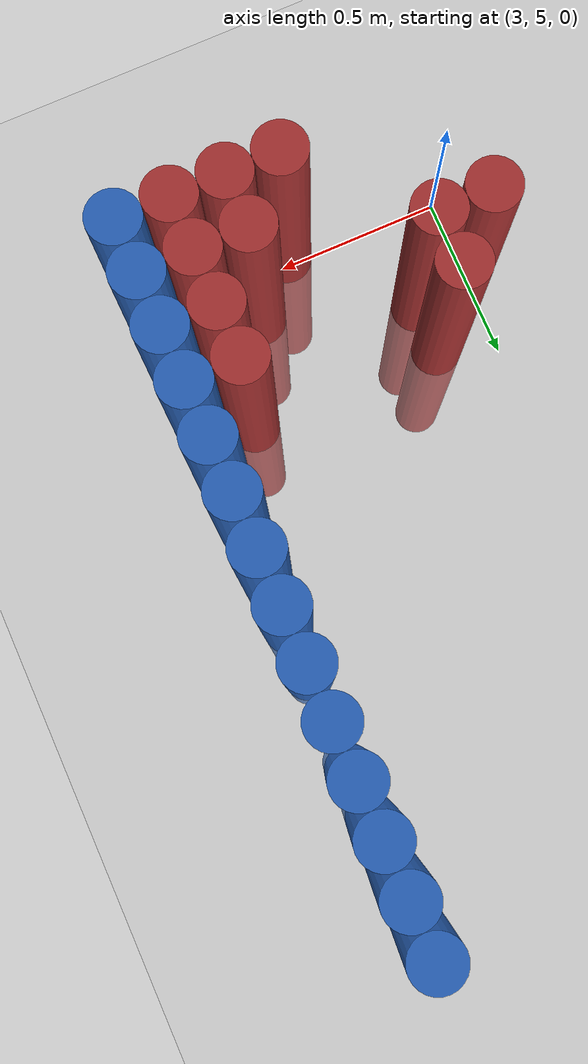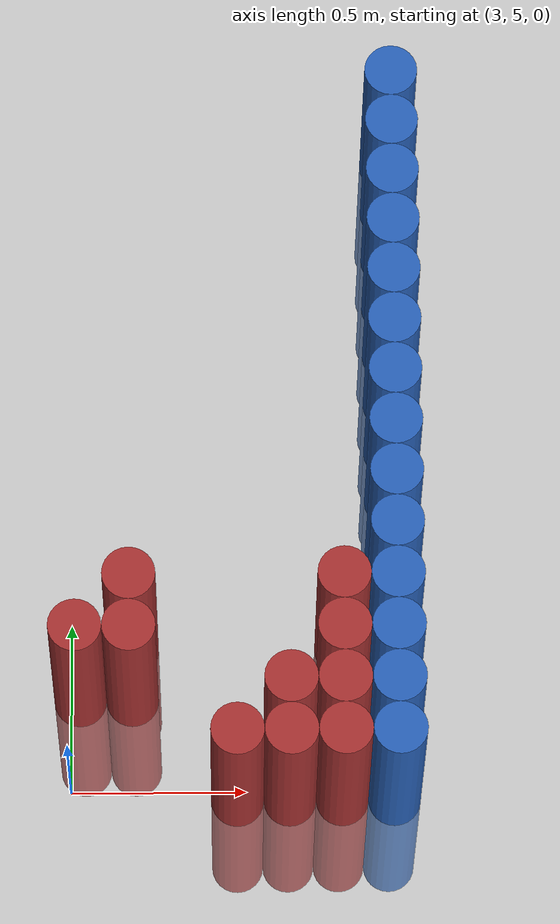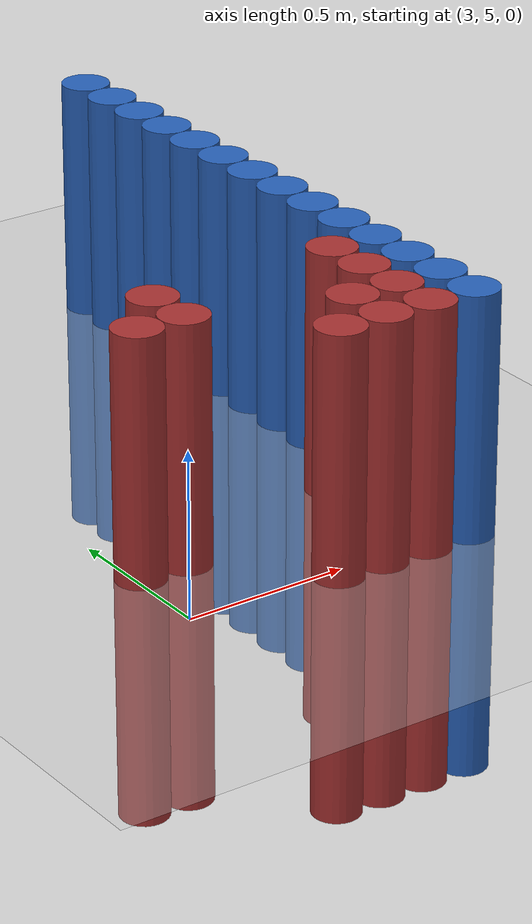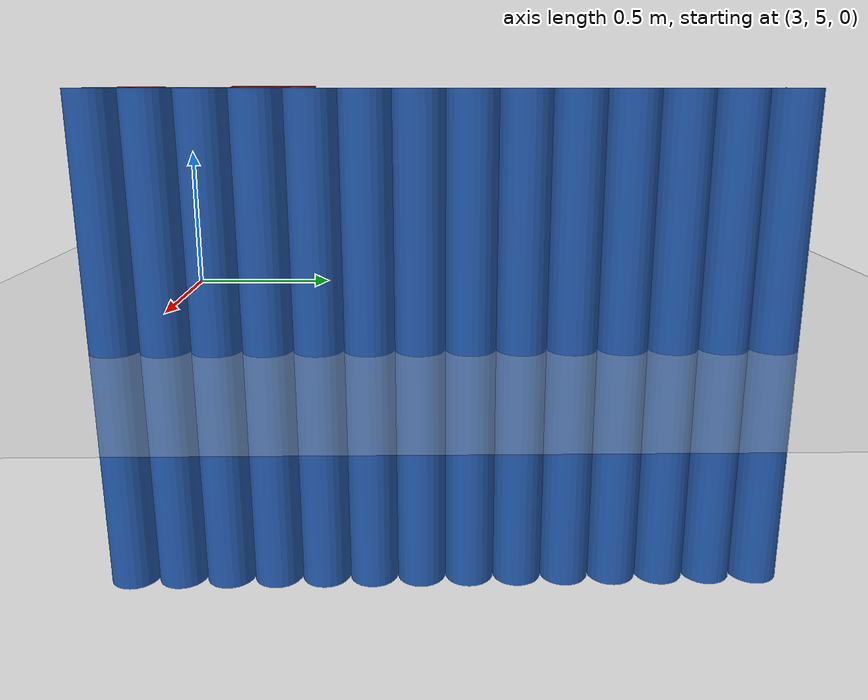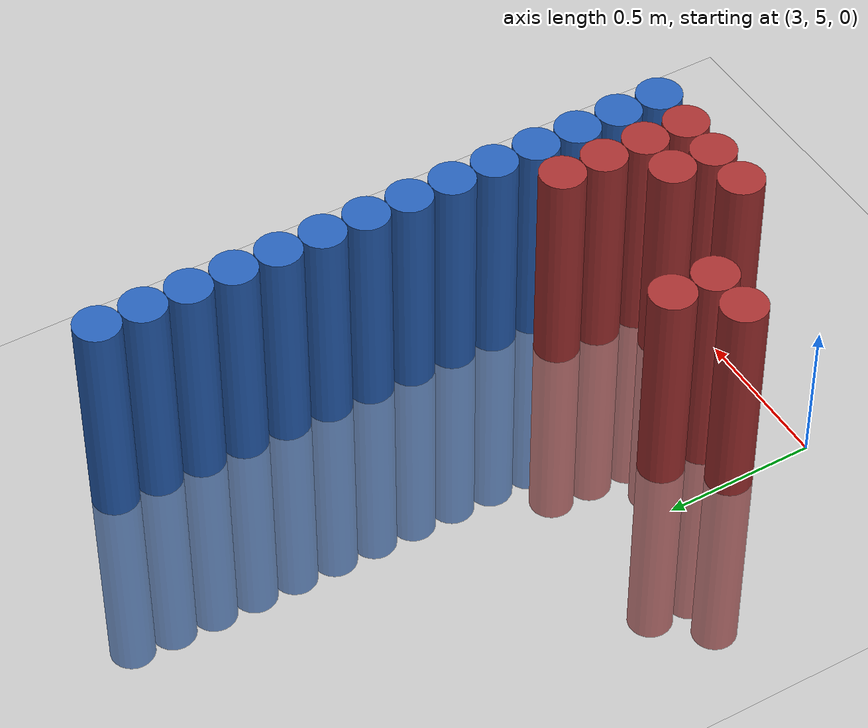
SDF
<sdf version="1.6">
 <world name="default">
  <model name="ground_plane">
   <static>1</static>
   <link name="link">
    <collision name="collision">
     <geometry><plane><normal>0 0 1</normal><size>100 100</size></plane></geometry>
     <surface><friction><ode><mu>100</mu><mu2>50</mu2></ode></friction></surface>
    </collision>
    <visual name="visual">
     <cast_shadows>0</cast_shadows>
     <geometry><plane><normal>0 0 1</normal><size>100 100</size></plane></geometry>
     <material>
      <script><uri>file://media/materials/scripts/gazebo.material</uri><name>Gazebo/Grey</name></script>
     </material>
    </visual>
   </link>
  </model>
  <model name="unit_cylinder_180">
   <static>1</static>
   <pose>3.925000 4.975000 0.000000 0.000000 0.000000 0.000000</pose>
   <link name="link">
    <inertial>
     <mass>1</mass>
     <inertia><ixx>0.145833</ixx><ixy>0</ixy><ixz>0</ixz><iyy>0.145833</iyy><iyz>0</iyz><izz>0.125</izz></inertia>
    </inertial>
    <collision name="collision">
     <geometry><cylinder><radius>0.075000</radius><length>1.5</length></cylinder></geometry>
    </collision>
    <visual name="visual">
     <geometry><cylinder><radius>0.075000</radius><length>1.5</length></cylinder></geometry>
     <material>
      <ambient>0.152000 0.379000 0.720000 1</ambient>
      <diffuse>0.152000 0.379000 0.720000 1</diffuse>
     </material>
     <material>
      <script><name>Gazebo/Grey</name><uri>file://media/materials/scripts/gazebo.material</uri></script>
     </material>
    </visual>
   </link>
  </model>
  <model name="unit_cylinder_182">
   <static>1</static>
   <pose>3.925000 5.125000 0.000000 0.000000 0.000000 0.000000</pose>
   <link name="link">
    <inertial>
     <mass>1</mass>
     <inertia><ixx>0.145833</ixx><ixy>0</ixy><ixz>0</ixz><iyy>0.145833</iyy><iyz>0</iyz><izz>0.125</izz></inertia>
    </inertial>
    <collision name="collision">
     <geometry><cylinder><radius>0.075000</radius><length>1.5</length></cylinder></geometry>
    </collision>
    <visual name="visual">
     <geometry><cylinder><radius>0.075000</radius><length>1.5</length></cylinder></geometry>
     <material>
      <ambient>0.152000 0.379000 0.720000 1</ambient>
      <diffuse>0.152000 0.379000 0.720000 1</diffuse>
     </material>
     <material>
      <script><name>Gazebo/Grey</name><uri>file://media/materials/scripts/gazebo.material</uri></script>
     </material>
    </visual>
   </link>
  </model>
  <model name="unit_cylinder_184">
   <static>1</static>
   <pose>3.925000 5.275000 0.000000 0.000000 0.000000 0.000000</pose>
   <link name="link">
    <inertial>
     <mass>1</mass>
     <inertia><ixx>0.145833</ixx><ixy>0</ixy><ixz>0</ixz><iyy>0.145833</iyy><iyz>0</iyz><izz>0.125</izz></inertia>
    </inertial>
    <collision name="collision">
     <geometry><cylinder><radius>0.075000</radius><length>1.5</length></cylinder></geometry>
    </collision>
    <visual name="visual">
     <geometry><cylinder><radius>0.075000</radius><length>1.5</length></cylinder></geometry>
     <material>
      <ambient>0.152000 0.379000 0.720000 1</ambient>
      <diffuse>0.152000 0.379000 0.720000 1</diffuse>
     </material>
     <material>
      <script><name>Gazebo/Grey</name><uri>file://media/materials/scripts/gazebo.material</uri></script>
     </material>
    </visual>
   </link>
  </model>
  <model name="unit_cylinder_186">
   <static>1</static>
   <pose>3.925000 5.425000 0.000000 0.000000 0.000000 0.000000</pose>
   <link name="link">
    <inertial>
     <mass>1</mass>
     <inertia><ixx>0.145833</ixx><ixy>0</ixy><ixz>0</ixz><iyy>0.145833</iyy><iyz>0</iyz><izz>0.125</izz></inertia>
    </inertial>
    <collision name="collision">
     <geometry><cylinder><radius>0.075000</radius><length>1.5</length></cylinder></geometry>
    </collision>
    <visual name="visual">
     <geometry><cylinder><radius>0.075000</radius><length>1.5</length></cylinder></geometry>
     <material>
      <ambient>0.152000 0.379000 0.720000 1</ambient>
      <diffuse>0.152000 0.379000 0.720000 1</diffuse>
     </material>
     <material>
      <script><name>Gazebo/Grey</name><uri>file://media/materials/scripts/gazebo.material</uri></script>
     </material>
    </visual>
   </link>
  </model>
  <model name="unit_cylinder_188">
   <static>1</static>
   <pose>3.925000 5.575000 0.000000 0.000000 0.000000 0.000000</pose>
   <link name="link">
    <inertial>
     <mass>1</mass>
     <inertia><ixx>0.145833</ixx><ixy>0</ixy><ixz>0</ixz><iyy>0.145833</iyy><iyz>0</iyz><izz>0.125</izz></inertia>
    </inertial>
    <collision name="collision">
     <geometry><cylinder><radius>0.075000</radius><length>1.5</length></cylinder></geometry>
    </collision>
    <visual name="visual">
     <geometry><cylinder><radius>0.075000</radius><length>1.5</length></cylinder></geometry>
     <material>
      <ambient>0.152000 0.379000 0.720000 1</ambient>
      <diffuse>0.152000 0.379000 0.720000 1</diffuse>
     </material>
     <material>
      <script><name>Gazebo/Grey</name><uri>file://media/materials/scripts/gazebo.material</uri></script>
     </material>
    </visual>
   </link>
  </model>
  <model name="unit_cylinder_190">
   <static>1</static>
   <pose>3.925000 5.725000 0.000000 0.000000 0.000000 0.000000</pose>
   <link name="link">
    <inertial>
     <mass>1</mass>
     <inertia><ixx>0.145833</ixx><ixy>0</ixy><ixz>0</ixz><iyy>0.145833</iyy><iyz>0</iyz><izz>0.125</izz></inertia>
    </inertial>
    <collision name="collision">
     <geometry><cylinder><radius>0.075000</radius><length>1.5</length></cylinder></geometry>
    </collision>
    <visual name="visual">
     <geometry><cylinder><radius>0.075000</radius><length>1.5</length></cylinder></geometry>
     <material>
      <ambient>0.152000 0.379000 0.720000 1</ambient>
      <diffuse>0.152000 0.379000 0.720000 1</diffuse>
     </material>
     <material>
      <script><name>Gazebo/Grey</name><uri>file://media/materials/scripts/gazebo.material</uri></script>
     </material>
    </visual>
   </link>
  </model>
  <model name="unit_cylinder_192">
   <static>1</static>
   <pose>3.925000 5.875000 0.000000 0.000000 0.000000 0.000000</pose>
   <link name="link">
    <inertial>
     <mass>1</mass>
     <inertia><ixx>0.145833</ixx><ixy>0</ixy><ixz>0</ixz><iyy>0.145833</iyy><iyz>0</iyz><izz>0.125</izz></inertia>
    </inertial>
    <collision name="collision">
     <geometry><cylinder><radius>0.075000</radius><length>1.5</length></cylinder></geometry>
    </collision>
    <visual name="visual">
     <geometry><cylinder><radius>0.075000</radius><length>1.5</length></cylinder></geometry>
     <material>
      <ambient>0.152000 0.379000 0.720000 1</ambient>
      <diffuse>0.152000 0.379000 0.720000 1</diffuse>
     </material>
     <material>
      <script><name>Gazebo/Grey</name><uri>file://media/materials/scripts/gazebo.material</uri></script>
     </material>
    </visual>
   </link>
  </model>
  <model name="unit_cylinder_194">
   <static>1</static>
   <pose>3.925000 6.025000 0.000000 0.000000 0.000000 0.000000</pose>
   <link name="link">
    <inertial>
     <mass>1</mass>
     <inertia><ixx>0.145833</ixx><ixy>0</ixy><ixz>0</ixz><iyy>0.145833</iyy><iyz>0</iyz><izz>0.125</izz></inertia>
    </inertial>
    <collision name="collision">
     <geometry><cylinder><radius>0.075000</radius><length>1.5</length></cylinder></geometry>
    </collision>
    <visual name="visual">
     <geometry><cylinder><radius>0.075000</radius><length>1.5</length></cylinder></geometry>
     <material>
      <ambient>0.152000 0.379000 0.720000 1</ambient>
      <diffuse>0.152000 0.379000 0.720000 1</diffuse>
     </material>
     <material>
      <script><name>Gazebo/Grey</name><uri>file://media/materials/scripts/gazebo.material</uri></script>
     </material>
    </visual>
   </link>
  </model>
  <model name="unit_cylinder_196">
   <static>1</static>
   <pose>3.925000 6.175000 0.000000 0.000000 0.000000 0.000000</pose>
   <link name="link">
    <inertial>
     <mass>1</mass>
     <inertia><ixx>0.145833</ixx><ixy>0</ixy><ixz>0</ixz><iyy>0.145833</iyy><iyz>0</iyz><izz>0.125</izz></inertia>
    </inertial>
    <collision name="collision">
     <geometry><cylinder><radius>0.075000</radius><length>1.5</length></cylinder></geometry>
    </collision>
    <visual name="visual">
     <geometry><cylinder><radius>0.075000</radius><length>1.5</length></cylinder></geometry>
     <material>
      <ambient>0.152000 0.379000 0.720000 1</ambient>
      <diffuse>0.152000 0.379000 0.720000 1</diffuse>
     </material>
     <material>
      <script><name>Gazebo/Grey</name><uri>file://media/materials/scripts/gazebo.material</uri></script>
     </material>
    </visual>
   </link>
  </model>
  <model name="unit_cylinder_198">
   <static>1</static>
   <pose>3.925000 6.325000 0.000000 0.000000 0.000000 0.000000</pose>
   <link name="link">
    <inertial>
     <mass>1</mass>
     <inertia><ixx>0.145833</ixx><ixy>0</ixy><ixz>0</ixz><iyy>0.145833</iyy><iyz>0</iyz><izz>0.125</izz></inertia>
    </inertial>
    <collision name="collision">
     <geometry><cylinder><radius>0.075000</radius><length>1.5</length></cylinder></geometry>
    </collision>
    <visual name="visual">
     <geometry><cylinder><radius>0.075000</radius><length>1.5</length></cylinder></geometry>
     <material>
      <ambient>0.152000 0.379000 0.720000 1</ambient>
      <diffuse>0.152000 0.379000 0.720000 1</diffuse>
     </material>
     <material>
      <script><name>Gazebo/Grey</name><uri>file://media/materials/scripts/gazebo.material</uri></script>
     </material>
    </visual>
   </link>
  </model>
  <model name="unit_cylinder_200">
   <static>1</static>
   <pose>3.925000 6.475000 0.000000 0.000000 0.000000 0.000000</pose>
   <link name="link">
    <inertial>
     <mass>1</mass>
     <inertia><ixx>0.145833</ixx><ixy>0</ixy><ixz>0</ixz><iyy>0.145833</iyy><iyz>0</iyz><izz>0.125</izz></inertia>
    </inertial>
    <collision name="collision">
     <geometry><cylinder><radius>0.075000</radius><length>1.5</length></cylinder></geometry>
    </collision>
    <visual name="visual">
     <geometry><cylinder><radius>0.075000</radius><length>1.5</length></cylinder></geometry>
     <material>
      <ambient>0.152000 0.379000 0.720000 1</ambient>
      <diffuse>0.152000 0.379000 0.720000 1</diffuse>
     </material>
     <material>
      <script><name>Gazebo/Grey</name><uri>file://media/materials/scripts/gazebo.material</uri></script>
     </material>
    </visual>
   </link>
  </model>
  <model name="unit_cylinder_202">
   <static>1</static>
   <pose>3.925000 6.625000 0.000000 0.000000 0.000000 0.000000</pose>
   <link name="link">
    <inertial>
     <mass>1</mass>
     <inertia><ixx>0.145833</ixx><ixy>0</ixy><ixz>0</ixz><iyy>0.145833</iyy><iyz>0</iyz><izz>0.125</izz></inertia>
    </inertial>
    <collision name="collision">
     <geometry><cylinder><radius>0.075000</radius><length>1.5</length></cylinder></geometry>
    </collision>
    <visual name="visual">
     <geometry><cylinder><radius>0.075000</radius><length>1.5</length></cylinder></geometry>
     <material>
      <ambient>0.152000 0.379000 0.720000 1</ambient>
      <diffuse>0.152000 0.379000 0.720000 1</diffuse>
     </material>
     <material>
      <script><name>Gazebo/Grey</name><uri>file://media/materials/scripts/gazebo.material</uri></script>
     </material>
    </visual>
   </link>
  </model>
  <model name="unit_cylinder_204">
   <static>1</static>
   <pose>3.925000 6.775000 0.000000 0.000000 0.000000 0.000000</pose>
   <link name="link">
    <inertial>
     <mass>1</mass>
     <inertia><ixx>0.145833</ixx><ixy>0</ixy><ixz>0</ixz><iyy>0.145833</iyy><iyz>0</iyz><izz>0.125</izz></inertia>
    </inertial>
    <collision name="collision">
     <geometry><cylinder><radius>0.075000</radius><length>1.5</length></cylinder></geometry>
    </collision>
    <visual name="visual">
     <geometry><cylinder><radius>0.075000</radius><length>1.5</length></cylinder></geometry>
     <material>
      <ambient>0.152000 0.379000 0.720000 1</ambient>
      <diffuse>0.152000 0.379000 0.720000 1</diffuse>
     </material>
     <material>
      <script><name>Gazebo/Grey</name><uri>file://media/materials/scripts/gazebo.material</uri></script>
     </material>
    </visual>
   </link>
  </model>
  <model name="unit_cylinder_206">
   <static>1</static>
   <pose>3.925000 6.925000 0.000000 0.000000 0.000000 0.000000</pose>
   <link name="link">
    <inertial>
     <mass>1</mass>
     <inertia><ixx>0.145833</ixx><ixy>0</ixy><ixz>0</ixz><iyy>0.145833</iyy><iyz>0</iyz><izz>0.125</izz></inertia>
    </inertial>
    <collision name="collision">
     <geometry><cylinder><radius>0.075000</radius><length>1.5</length></cylinder></geometry>
    </collision>
    <visual name="visual">
     <geometry><cylinder><radius>0.075000</radius><length>1.5</length></cylinder></geometry>
     <material>
      <ambient>0.152000 0.379000 0.720000 1</ambient>
      <diffuse>0.152000 0.379000 0.720000 1</diffuse>
     </material>
     <material>
      <script><name>Gazebo/Grey</name><uri>file://media/materials/scripts/gazebo.material</uri></script>
     </material>
    </visual>
   </link>
  </model>
  <model name="unit_cylinder_447">
   <static>1</static>
   <pose>3.025000 5.275000 0.000000 0.000000 0.000000 0.000000</pose>
   <link name="link">
    <inertial>
     <mass>1</mass>
     <inertia><ixx>0.145833</ixx><ixy>0</ixy><ixz>0</ixz><iyy>0.145833</iyy><iyz>0</iyz><izz>0.125</izz></inertia>
    </inertial>
    <collision name="collision">
     <geometry><cylinder><radius>0.075000</radius><length>1.5</length></cylinder></geometry>
    </collision>
    <visual name="visual">
     <geometry><cylinder><radius>0.075000</radius><length>1.5</length></cylinder></geometry>
     <material>
      <ambient>0.648000 0.192000 0.192000 1</ambient>
      <diffuse>0.648000 0.192000 0.192000 1</diffuse>
     </material>
     <material>
      <script><name>Gazebo/Grey</name><uri>file://media/materials/scripts/gazebo.material</uri></script>
     </material>
    </visual>
   </link>
  </model>
  <model name="unit_cylinder_448">
   <static>1</static>
   <pose>3.175000 5.275000 0.000000 0.000000 0.000000 0.000000</pose>
   <link name="link">
    <inertial>
     <mass>1</mass>
     <inertia><ixx>0.145833</ixx><ixy>0</ixy><ixz>0</ixz><iyy>0.145833</iyy><iyz>0</iyz><izz>0.125</izz></inertia>
    </inertial>
    <collision name="collision">
     <geometry><cylinder><radius>0.075000</radius><length>1.5</length></cylinder></geometry>
    </collision>
    <visual name="visual">
     <geometry><cylinder><radius>0.075000</radius><length>1.5</length></cylinder></geometry>
     <material>
      <ambient>0.648000 0.192000 0.192000 1</ambient>
      <diffuse>0.648000 0.192000 0.192000 1</diffuse>
     </material>
     <material>
      <script><name>Gazebo/Grey</name><uri>file://media/materials/scripts/gazebo.material</uri></script>
     </material>
    </visual>
   </link>
  </model>
  <model name="unit_cylinder_449">
   <static>1</static>
   <pose>3.175000 5.425000 0.000000 0.000000 0.000000 0.000000</pose>
   <link name="link">
    <inertial>
     <mass>1</mass>
     <inertia><ixx>0.145833</ixx><ixy>0</ixy><ixz>0</ixz><iyy>0.145833</iyy><iyz>0</iyz><izz>0.125</izz></inertia>
    </inertial>
    <collision name="collision">
     <geometry><cylinder><radius>0.075000</radius><length>1.5</length></cylinder></geometry>
    </collision>
    <visual name="visual">
     <geometry><cylinder><radius>0.075000</radius><length>1.5</length></cylinder></geometry>
     <material>
      <ambient>0.648000 0.192000 0.192000 1</ambient>
      <diffuse>0.648000 0.192000 0.192000 1</diffuse>
     </material>
     <material>
      <script><name>Gazebo/Grey</name><uri>file://media/materials/scripts/gazebo.material</uri></script>
     </material>
    </visual>
   </link>
  </model>
  <model name="unit_cylinder_459">
   <static>1</static>
   <pose>3.475000 4.975000 0.000000 0.000000 0.000000 0.000000</pose>
   <link name="link">
    <inertial>
     <mass>1</mass>
     <inertia><ixx>0.145833</ixx><ixy>0</ixy><ixz>0</ixz><iyy>0.145833</iyy><iyz>0</iyz><izz>0.125</izz></inertia>
    </inertial>
    <collision name="collision">
     <geometry><cylinder><radius>0.075000</radius><length>1.5</length></cylinder></geometry>
    </collision>
    <visual name="visual">
     <geometry><cylinder><radius>0.075000</radius><length>1.5</length></cylinder></geometry>
     <material>
      <ambient>0.648000 0.192000 0.192000 1</ambient>
      <diffuse>0.648000 0.192000 0.192000 1</diffuse>
     </material>
     <material>
      <script><name>Gazebo/Grey</name><uri>file://media/materials/scripts/gazebo.material</uri></script>
     </material>
    </visual>
   </link>
  </model>
  <model name="unit_cylinder_465">
   <static>1</static>
   <pose>3.625000 4.975000 0.000000 0.000000 0.000000 0.000000</pose>
   <link name="link">
    <inertial>
     <mass>1</mass>
     <inertia><ixx>0.145833</ixx><ixy>0</ixy><ixz>0</ixz><iyy>0.145833</iyy><iyz>0</iyz><izz>0.125</izz></inertia>
    </inertial>
    <collision name="collision">
     <geometry><cylinder><radius>0.075000</radius><length>1.5</length></cylinder></geometry>
    </collision>
    <visual name="visual">
     <geometry><cylinder><radius>0.075000</radius><length>1.5</length></cylinder></geometry>
     <material>
      <ambient>0.648000 0.192000 0.192000 1</ambient>
      <diffuse>0.648000 0.192000 0.192000 1</diffuse>
     </material>
     <material>
      <script><name>Gazebo/Grey</name><uri>file://media/materials/scripts/gazebo.material</uri></script>
     </material>
    </visual>
   </link>
  </model>
  <model name="unit_cylinder_466">
   <static>1</static>
   <pose>3.625000 5.125000 0.000000 0.000000 0.000000 0.000000</pose>
   <link name="link">
    <inertial>
     <mass>1</mass>
     <inertia><ixx>0.145833</ixx><ixy>0</ixy><ixz>0</ixz><iyy>0.145833</iyy><iyz>0</iyz><izz>0.125</izz></inertia>
    </inertial>
    <collision name="collision">
     <geometry><cylinder><radius>0.075000</radius><length>1.5</length></cylinder></geometry>
    </collision>
    <visual name="visual">
     <geometry><cylinder><radius>0.075000</radius><length>1.5</length></cylinder></geometry>
     <material>
      <ambient>0.648000 0.192000 0.192000 1</ambient>
      <diffuse>0.648000 0.192000 0.192000 1</diffuse>
     </material>
     <material>
      <script><name>Gazebo/Grey</name><uri>file://media/materials/scripts/gazebo.material</uri></script>
     </material>
    </visual>
   </link>
  </model>
  <model name="unit_cylinder_489">
   <static>1</static>
   <pose>3.775000 4.975000 0.000000 0.000000 0.000000 0.000000</pose>
   <link name="link">
    <inertial>
     <mass>1</mass>
     <inertia><ixx>0.145833</ixx><ixy>0</ixy><ixz>0</ixz><iyy>0.145833</iyy><iyz>0</iyz><izz>0.125</izz></inertia>
    </inertial>
    <collision name="collision">
     <geometry><cylinder><radius>0.075000</radius><length>1.5</length></cylinder></geometry>
    </collision>
    <visual name="visual">
     <geometry><cylinder><radius>0.075000</radius><length>1.5</length></cylinder></geometry>
     <material>
      <ambient>0.648000 0.192000 0.192000 1</ambient>
      <diffuse>0.648000 0.192000 0.192000 1</diffuse>
     </material>
     <material>
      <script><name>Gazebo/Grey</name><uri>file://media/materials/scripts/gazebo.material</uri></script>
     </material>
    </visual>
   </link>
  </model>
  <model name="unit_cylinder_490">
   <static>1</static>
   <pose>3.775000 5.125000 0.000000 0.000000 0.000000 0.000000</pose>
   <link name="link">
    <inertial>
     <mass>1</mass>
     <inertia><ixx>0.145833</ixx><ixy>0</ixy><ixz>0</ixz><iyy>0.145833</iyy><iyz>0</iyz><izz>0.125</izz></inertia>
    </inertial>
    <collision name="collision">
     <geometry><cylinder><radius>0.075000</radius><length>1.5</length></cylinder></geometry>
    </collision>
    <visual name="visual">
     <geometry><cylinder><radius>0.075000</radius><length>1.5</length></cylinder></geometry>
     <material>
      <ambient>0.648000 0.192000 0.192000 1</ambient>
      <diffuse>0.648000 0.192000 0.192000 1</diffuse>
     </material>
     <material>
      <script><name>Gazebo/Grey</name><uri>file://media/materials/scripts/gazebo.material</uri></script>
     </material>
    </visual>
   </link>
  </model>
  <model name="unit_cylinder_491">
   <static>1</static>
   <pose>3.775000 5.275000 0.000000 0.000000 0.000000 0.000000</pose>
   <link name="link">
    <inertial>
     <mass>1</mass>
     <inertia><ixx>0.145833</ixx><ixy>0</ixy><ixz>0</ixz><iyy>0.145833</iyy><iyz>0</iyz><izz>0.125</izz></inertia>
    </inertial>
    <collision name="collision">
     <geometry><cylinder><radius>0.075000</radius><length>1.5</length></cylinder></geometry>
    </collision>
    <visual name="visual">
     <geometry><cylinder><radius>0.075000</radius><length>1.5</length></cylinder></geometry>
     <material>
      <ambient>0.648000 0.192000 0.192000 1</ambient>
      <diffuse>0.648000 0.192000 0.192000 1</diffuse>
     </material>
     <material>
      <script><name>Gazebo/Grey</name><uri>file://media/materials/scripts/gazebo.material</uri></script>
     </material>
    </visual>
   </link>
  </model>
  <model name="unit_cylinder_492">
   <static>1</static>
   <pose>3.775000 5.425000 0.000000 0.000000 0.000000 0.000000</pose>
   <link name="link">
    <inertial>
     <mass>1</mass>
     <inertia><ixx>0.145833</ixx><ixy>0</ixy><ixz>0</ixz><iyy>0.145833</iyy><iyz>0</iyz><izz>0.125</izz></inertia>
    </inertial>
    <collision name="collision">
     <geometry><cylinder><radius>0.075000</radius><length>1.5</length></cylinder></geometry>
    </collision>
    <visual name="visual">
     <geometry><cylinder><radius>0.075000</radius><length>1.5</length></cylinder></geometry>
     <material>
      <ambient>0.648000 0.192000 0.192000 1</ambient>
      <diffuse>0.648000 0.192000 0.192000 1</diffuse>
     </material>
     <material>
      <script><name>Gazebo/Grey</name><uri>file://media/materials/scripts/gazebo.material</uri></script>
     </material>
    </visual>
   </link>
  </model>
  <model name="unit_cylinder_539">
   <static>1</static>
   <pose>3.925000 4.975000 0.000000 0.000000 0.000000 0.000000</pose>
   <link name="link">
    <inertial>
     <mass>1</mass>
     <inertia><ixx>0.145833</ixx><ixy>0</ixy><ixz>0</ixz><iyy>0.145833</iyy><iyz>0</iyz><izz>0.125</izz></inertia>
    </inertial>
    <collision name="collision">
     <geometry><cylinder><radius>0.075000</radius><length>1.5</length></cylinder></geometry>
    </collision>
    <visual name="visual">
     <geometry><cylinder><radius>0.075000</radius><length>1.5</length></cylinder></geometry>
     <material>
      <ambient>0.152000 0.379000 0.720000 1</ambient>
      <diffuse>0.152000 0.379000 0.720000 1</diffuse>
     </material>
     <material>
      <script><name>Gazebo/Grey</name><uri>file://media/materials/scripts/gazebo.material</uri></script>
     </material>
    </visual>
   </link>
  </model>
  <model name="unit_cylinder_540">
   <static>1</static>
   <pose>3.925000 5.125000 0.000000 0.000000 0.000000 0.000000</pose>
   <link name="link">
    <inertial>
     <mass>1</mass>
     <inertia><ixx>0.145833</ixx><ixy>0</ixy><ixz>0</ixz><iyy>0.145833</iyy><iyz>0</iyz><izz>0.125</izz></inertia>
    </inertial>
    <collision name="collision">
     <geometry><cylinder><radius>0.075000</radius><length>1.5</length></cylinder></geometry>
    </collision>
    <visual name="visual">
     <geometry><cylinder><radius>0.075000</radius><length>1.5</length></cylinder></geometry>
     <material>
      <ambient>0.152000 0.379000 0.720000 1</ambient>
      <diffuse>0.152000 0.379000 0.720000 1</diffuse>
     </material>
     <material>
      <script><name>Gazebo/Grey</name><uri>file://media/materials/scripts/gazebo.material</uri></script>
     </material>
    </visual>
   </link>
  </model>
  <model name="unit_cylinder_541">
   <static>1</static>
   <pose>3.925000 5.275000 0.000000 0.000000 0.000000 0.000000</pose>
   <link name="link">
    <inertial>
     <mass>1</mass>
     <inertia><ixx>0.145833</ixx><ixy>0</ixy><ixz>0</ixz><iyy>0.145833</iyy><iyz>0</iyz><izz>0.125</izz></inertia>
    </inertial>
    <collision name="collision">
     <geometry><cylinder><radius>0.075000</radius><length>1.5</length></cylinder></geometry>
    </collision>
    <visual name="visual">
     <geometry><cylinder><radius>0.075000</radius><length>1.5</length></cylinder></geometry>
     <material>
      <ambient>0.152000 0.379000 0.720000 1</ambient>
      <diffuse>0.152000 0.379000 0.720000 1</diffuse>
     </material>
     <material>
      <script><name>Gazebo/Grey</name><uri>file://media/materials/scripts/gazebo.material</uri></script>
     </material>
    </visual>
   </link>
  </model>
  <model name="unit_cylinder_542">
   <static>1</static>
   <pose>3.925000 5.425000 0.000000 0.000000 0.000000 0.000000</pose>
   <link name="link">
    <inertial>
     <mass>1</mass>
     <inertia><ixx>0.145833</ixx><ixy>0</ixy><ixz>0</ixz><iyy>0.145833</iyy><iyz>0</iyz><izz>0.125</izz></inertia>
    </inertial>
    <collision name="collision">
     <geometry><cylinder><radius>0.075000</radius><length>1.5</length></cylinder></geometry>
    </collision>
    <visual name="visual">
     <geometry><cylinder><radius>0.075000</radius><length>1.5</length></cylinder></geometry>
     <material>
      <ambient>0.152000 0.379000 0.720000 1</ambient>
      <diffuse>0.152000 0.379000 0.720000 1</diffuse>
     </material>
     <material>
      <script><name>Gazebo/Grey</name><uri>file://media/materials/scripts/gazebo.material</uri></script>
     </material>
    </visual>
   </link>
  </model>
 </world>
</sdf>
